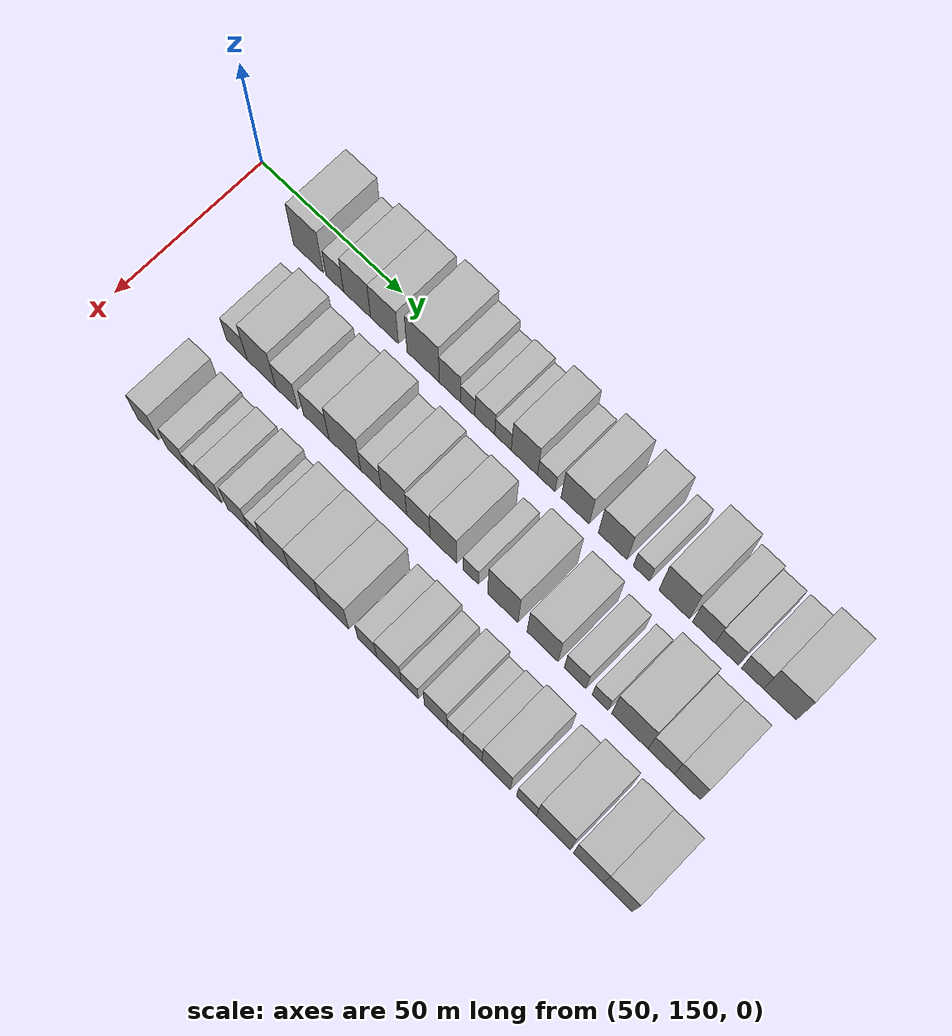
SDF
<sdf version="1.6">
 <world name="default">
  <model name="building_56">
   <static>1</static>
   <pose>50.0000 177.0735 0 0.000000 0.000000 0.000000</pose>
   <link name="link">
    <pose>0 0 12.00 0 0 0</pose>
    <collision name="collision"><geometry><box><size>20.0000 10.5805 24.0000</size></box></geometry></collision>
    <visual name="visual">
     <cast_shadows>0</cast_shadows>
     <geometry><box><size>20.0000 10.5805 24.0000</size></box></geometry>
     <material>
      <script>
       <uri>model://HANNAS_wall/materials/scripts</uri>
       <uri>model://HANNAS_wall/materials/textures</uri>
       <name>vrc/HANNAS_wall</name>
      </script>
     </material>
    </visual>
   </link>
  </model>
  <model name="building_57">
   <static>1</static>
   <pose>50.0000 186.5038 0 0.000000 0.000000 0.000000</pose>
   <link name="link">
    <pose>0 0 7.50 0 0 0</pose>
    <collision name="collision"><geometry><box><size>20.0000 6.2799 15.0000</size></box></geometry></collision>
    <visual name="visual">
     <cast_shadows>0</cast_shadows>
     <geometry><box><size>20.0000 6.2799 15.0000</size></box></geometry>
     <material>
      <script>
       <uri>model://HANNAS_wall/materials/scripts</uri>
       <uri>model://HANNAS_wall/materials/textures</uri>
       <name>vrc/HANNAS_wall</name>
      </script>
     </material>
    </visual>
   </link>
  </model>
  <model name="building_58">
   <static>1</static>
   <pose>50.0000 194.4133 0 0.000000 0.000000 0.000000</pose>
   <link name="link">
    <pose>0 0 10.50 0 0 0</pose>
    <collision name="collision"><geometry><box><size>20.0000 9.5391 21.0000</size></box></geometry></collision>
    <visual name="visual">
     <cast_shadows>0</cast_shadows>
     <geometry><box><size>20.0000 9.5391 21.0000</size></box></geometry>
     <material>
      <script>
       <uri>model://HANNAS_wall/materials/scripts</uri>
       <uri>model://HANNAS_wall/materials/textures</uri>
       <name>vrc/HANNAS_wall</name>
      </script>
     </material>
    </visual>
   </link>
  </model>
  <model name="building_59">
   <static>1</static>
   <pose>50.0000 204.0315 0 0.000000 0.000000 0.000000</pose>
   <link name="link">
    <pose>0 0 10.50 0 0 0</pose>
    <collision name="collision"><geometry><box><size>20.0000 9.6973 21.0000</size></box></geometry></collision>
    <visual name="visual">
     <cast_shadows>0</cast_shadows>
     <geometry><box><size>20.0000 9.6973 21.0000</size></box></geometry>
     <material>
      <script>
       <uri>model://HANNAS_wall/materials/scripts</uri>
       <uri>model://HANNAS_wall/materials/textures</uri>
       <name>vrc/HANNAS_wall</name>
      </script>
     </material>
    </visual>
   </link>
  </model>
  <model name="building_60">
   <static>1</static>
   <pose>50.0000 217.4549 0 0.000000 0.000000 0.000000</pose>
   <link name="link">
    <pose>0 0 12.00 0 0 0</pose>
    <collision name="collision"><geometry><box><size>20.0000 11.1494 24.0000</size></box></geometry></collision>
    <visual name="visual">
     <cast_shadows>0</cast_shadows>
     <geometry><box><size>20.0000 11.1494 24.0000</size></box></geometry>
     <material>
      <script>
       <uri>model://HANNAS_wall/materials/scripts</uri>
       <uri>model://HANNAS_wall/materials/textures</uri>
       <name>vrc/HANNAS_wall</name>
      </script>
     </material>
    </visual>
   </link>
  </model>
  <model name="building_61">
   <static>1</static>
   <pose>50.0000 226.6363 0 0.000000 0.000000 0.000000</pose>
   <link name="link">
    <pose>0 0 9.00 0 0 0</pose>
    <collision name="collision"><geometry><box><size>20.0000 7.2135 18.0000</size></box></geometry></collision>
    <visual name="visual">
     <cast_shadows>0</cast_shadows>
     <geometry><box><size>20.0000 7.2135 18.0000</size></box></geometry>
     <material>
      <script>
       <uri>model://HANNAS_wall/materials/scripts</uri>
       <uri>model://HANNAS_wall/materials/textures</uri>
       <name>vrc/HANNAS_wall</name>
      </script>
     </material>
    </visual>
   </link>
  </model>
  <model name="building_62">
   <static>1</static>
   <pose>50.0000 232.7166 0 0.000000 0.000000 0.000000</pose>
   <link name="link">
    <pose>0 0 6.00 0 0 0</pose>
    <collision name="collision"><geometry><box><size>20.0000 4.9470 12.0000</size></box></geometry></collision>
    <visual name="visual">
     <cast_shadows>0</cast_shadows>
     <geometry><box><size>20.0000 4.9470 12.0000</size></box></geometry>
     <material>
      <script>
       <uri>model://HANNAS_wall/materials/scripts</uri>
       <uri>model://HANNAS_wall/materials/textures</uri>
       <name>vrc/HANNAS_wall</name>
      </script>
     </material>
    </visual>
   </link>
  </model>
  <model name="building_63">
   <static>1</static>
   <pose>50.0000 238.5636 0 0.000000 0.000000 0.000000</pose>
   <link name="link">
    <pose>0 0 7.50 0 0 0</pose>
    <collision name="collision"><geometry><box><size>20.0000 6.7471 15.0000</size></box></geometry></collision>
    <visual name="visual">
     <cast_shadows>0</cast_shadows>
     <geometry><box><size>20.0000 6.7471 15.0000</size></box></geometry>
     <material>
      <script>
       <uri>model://HANNAS_wall/materials/scripts</uri>
       <uri>model://HANNAS_wall/materials/textures</uri>
       <name>vrc/HANNAS_wall</name>
      </script>
     </material>
    </visual>
   </link>
  </model>
  <model name="building_64">
   <static>1</static>
   <pose>50.0000 244.7161 0 0.000000 0.000000 0.000000</pose>
   <link name="link">
    <pose>0 0 6.00 0 0 0</pose>
    <collision name="collision"><geometry><box><size>20.0000 5.5579 12.0000</size></box></geometry></collision>
    <visual name="visual">
     <cast_shadows>0</cast_shadows>
     <geometry><box><size>20.0000 5.5579 12.0000</size></box></geometry>
     <material>
      <script>
       <uri>model://HANNAS_wall/materials/scripts</uri>
       <uri>model://HANNAS_wall/materials/textures</uri>
       <name>vrc/HANNAS_wall</name>
      </script>
     </material>
    </visual>
   </link>
  </model>
  <model name="building_65">
   <static>1</static>
   <pose>50.0000 251.9067 0 0.000000 0.000000 0.000000</pose>
   <link name="link">
    <pose>0 0 10.50 0 0 0</pose>
    <collision name="collision"><geometry><box><size>20.0000 8.8235 21.0000</size></box></geometry></collision>
    <visual name="visual">
     <cast_shadows>0</cast_shadows>
     <geometry><box><size>20.0000 8.8235 21.0000</size></box></geometry>
     <material>
      <script>
       <uri>model://HANNAS_wall/materials/scripts</uri>
       <uri>model://HANNAS_wall/materials/textures</uri>
       <name>vrc/HANNAS_wall</name>
      </script>
     </material>
    </visual>
   </link>
  </model>
  <model name="building_66">
   <static>1</static>
   <pose>50.0000 259.2285 0 0.000000 0.000000 0.000000</pose>
   <link name="link">
    <pose>0 0 6.00 0 0 0</pose>
    <collision name="collision"><geometry><box><size>20.0000 5.8201 12.0000</size></box></geometry></collision>
    <visual name="visual">
     <cast_shadows>0</cast_shadows>
     <geometry><box><size>20.0000 5.8201 12.0000</size></box></geometry>
     <material>
      <script>
       <uri>model://HANNAS_wall/materials/scripts</uri>
       <uri>model://HANNAS_wall/materials/textures</uri>
       <name>vrc/HANNAS_wall</name>
      </script>
     </material>
    </visual>
   </link>
  </model>
  <model name="building_67">
   <static>1</static>
   <pose>50.0000 268.7913 0 0.000000 0.000000 0.000000</pose>
   <link name="link">
    <pose>0 0 10.50 0 0 0</pose>
    <collision name="collision"><geometry><box><size>20.0000 9.3053 21.0000</size></box></geometry></collision>
    <visual name="visual">
     <cast_shadows>0</cast_shadows>
     <geometry><box><size>20.0000 9.3053 21.0000</size></box></geometry>
     <material>
      <script>
       <uri>model://HANNAS_wall/materials/scripts</uri>
       <uri>model://HANNAS_wall/materials/textures</uri>
       <name>vrc/HANNAS_wall</name>
      </script>
     </material>
    </visual>
   </link>
  </model>
  <model name="building_68">
   <static>1</static>
   <pose>50.0000 281.1431 0 0.000000 0.000000 0.000000</pose>
   <link name="link">
    <pose>0 0 10.50 0 0 0</pose>
    <collision name="collision"><geometry><box><size>20.0000 9.3983 21.0000</size></box></geometry></collision>
    <visual name="visual">
     <cast_shadows>0</cast_shadows>
     <geometry><box><size>20.0000 9.3983 21.0000</size></box></geometry>
     <material>
      <script>
       <uri>model://HANNAS_wall/materials/scripts</uri>
       <uri>model://HANNAS_wall/materials/textures</uri>
       <name>vrc/HANNAS_wall</name>
      </script>
     </material>
    </visual>
   </link>
  </model>
  <model name="building_69">
   <static>1</static>
   <pose>50.0000 290.4955 0 0.000000 0.000000 0.000000</pose>
   <link name="link">
    <pose>0 0 6.00 0 0 0</pose>
    <collision name="collision"><geometry><box><size>20.0000 5.3065 12.0000</size></box></geometry></collision>
    <visual name="visual">
     <cast_shadows>0</cast_shadows>
     <geometry><box><size>20.0000 5.3065 12.0000</size></box></geometry>
     <material>
      <script>
       <uri>model://HANNAS_wall/materials/scripts</uri>
       <uri>model://HANNAS_wall/materials/textures</uri>
       <name>vrc/HANNAS_wall</name>
      </script>
     </material>
    </visual>
   </link>
  </model>
  <model name="building_70">
   <static>1</static>
   <pose>50.0000 301.0372 0 0.000000 0.000000 0.000000</pose>
   <link name="link">
    <pose>0 0 12.00 0 0 0</pose>
    <collision name="collision"><geometry><box><size>20.0000 9.7767 24.0000</size></box></geometry></collision>
    <visual name="visual">
     <cast_shadows>0</cast_shadows>
     <geometry><box><size>20.0000 9.7767 24.0000</size></box></geometry>
     <material>
      <script>
       <uri>model://HANNAS_wall/materials/scripts</uri>
       <uri>model://HANNAS_wall/materials/textures</uri>
       <name>vrc/HANNAS_wall</name>
      </script>
     </material>
    </visual>
   </link>
  </model>
  <model name="building_71">
   <static>1</static>
   <pose>50.0000 310.5488 0 0.000000 0.000000 0.000000</pose>
   <link name="link">
    <pose>0 0 9.00 0 0 0</pose>
    <collision name="collision"><geometry><box><size>20.0000 7.2466 18.0000</size></box></geometry></collision>
    <visual name="visual">
     <cast_shadows>0</cast_shadows>
     <geometry><box><size>20.0000 7.2466 18.0000</size></box></geometry>
     <material>
      <script>
       <uri>model://HANNAS_wall/materials/scripts</uri>
       <uri>model://HANNAS_wall/materials/textures</uri>
       <name>vrc/HANNAS_wall</name>
      </script>
     </material>
    </visual>
   </link>
  </model>
  <model name="building_72">
   <static>1</static>
   <pose>50.0000 317.8101 0 0.000000 0.000000 0.000000</pose>
   <link name="link">
    <pose>0 0 7.50 0 0 0</pose>
    <collision name="collision"><geometry><box><size>20.0000 7.2759 15.0000</size></box></geometry></collision>
    <visual name="visual">
     <cast_shadows>0</cast_shadows>
     <geometry><box><size>20.0000 7.2759 15.0000</size></box></geometry>
     <material>
      <script>
       <uri>model://HANNAS_wall/materials/scripts</uri>
       <uri>model://HANNAS_wall/materials/textures</uri>
       <name>vrc/HANNAS_wall</name>
      </script>
     </material>
    </visual>
   </link>
  </model>
  <model name="building_73">
   <static>1</static>
   <pose>50.0000 325.9385 0 0.000000 0.000000 0.000000</pose>
   <link name="link">
    <pose>0 0 7.50 0 0 0</pose>
    <collision name="collision"><geometry><box><size>20.0000 6.9809 15.0000</size></box></geometry></collision>
    <visual name="visual">
     <cast_shadows>0</cast_shadows>
     <geometry><box><size>20.0000 6.9809 15.0000</size></box></geometry>
     <material>
      <script>
       <uri>model://HANNAS_wall/materials/scripts</uri>
       <uri>model://HANNAS_wall/materials/textures</uri>
       <name>vrc/HANNAS_wall</name>
      </script>
     </material>
    </visual>
   </link>
  </model>
  <model name="building_74">
   <static>1</static>
   <pose>50.0000 334.4975 0 0.000000 0.000000 0.000000</pose>
   <link name="link">
    <pose>0 0 12.00 0 0 0</pose>
    <collision name="collision"><geometry><box><size>20.0000 10.1372 24.0000</size></box></geometry></collision>
    <visual name="visual">
     <cast_shadows>0</cast_shadows>
     <geometry><box><size>20.0000 10.1372 24.0000</size></box></geometry>
     <material>
      <script>
       <uri>model://HANNAS_wall/materials/scripts</uri>
       <uri>model://HANNAS_wall/materials/textures</uri>
       <name>vrc/HANNAS_wall</name>
      </script>
     </material>
    </visual>
   </link>
  </model>
  <model name="building_131">
   <static>1</static>
   <pose>79.0000 182.2149 0 0.000000 0.000000 0.000000</pose>
   <link name="link">
    <pose>0 0 7.50 0 0 0</pose>
    <collision name="collision"><geometry><box><size>20.0000 7.2823 15.0000</size></box></geometry></collision>
    <visual name="visual">
     <cast_shadows>0</cast_shadows>
     <geometry><box><size>20.0000 7.2823 15.0000</size></box></geometry>
     <material>
      <script>
       <uri>model://HANNAS_wall/materials/scripts</uri>
       <uri>model://HANNAS_wall/materials/textures</uri>
       <name>vrc/HANNAS_wall</name>
      </script>
     </material>
    </visual>
   </link>
  </model>
  <model name="building_132">
   <static>1</static>
   <pose>79.0000 190.9403 0 0.000000 0.000000 0.000000</pose>
   <link name="link">
    <pose>0 0 12.00 0 0 0</pose>
    <collision name="collision"><geometry><box><size>20.0000 10.1685 24.0000</size></box></geometry></collision>
    <visual name="visual">
     <cast_shadows>0</cast_shadows>
     <geometry><box><size>20.0000 10.1685 24.0000</size></box></geometry>
     <material>
      <script>
       <uri>model://HANNAS_wall/materials/scripts</uri>
       <uri>model://HANNAS_wall/materials/textures</uri>
       <name>vrc/HANNAS_wall</name>
      </script>
     </material>
    </visual>
   </link>
  </model>
  <model name="building_133">
   <static>1</static>
   <pose>79.0000 199.8588 0 0.000000 0.000000 0.000000</pose>
   <link name="link">
    <pose>0 0 9.00 0 0 0</pose>
    <collision name="collision"><geometry><box><size>20.0000 7.6685 18.0000</size></box></geometry></collision>
    <visual name="visual">
     <cast_shadows>0</cast_shadows>
     <geometry><box><size>20.0000 7.6685 18.0000</size></box></geometry>
     <material>
      <script>
       <uri>model://HANNAS_wall/materials/scripts</uri>
       <uri>model://HANNAS_wall/materials/textures</uri>
       <name>vrc/HANNAS_wall</name>
      </script>
     </material>
    </visual>
   </link>
  </model>
  <model name="building_134">
   <static>1</static>
   <pose>79.0000 210.1257 0 0.000000 0.000000 0.000000</pose>
   <link name="link">
    <pose>0 0 9.00 0 0 0</pose>
    <collision name="collision"><geometry><box><size>20.0000 8.8654 18.0000</size></box></geometry></collision>
    <visual name="visual">
     <cast_shadows>0</cast_shadows>
     <geometry><box><size>20.0000 8.8654 18.0000</size></box></geometry>
     <material>
      <script>
       <uri>model://HANNAS_wall/materials/scripts</uri>
       <uri>model://HANNAS_wall/materials/textures</uri>
       <name>vrc/HANNAS_wall</name>
      </script>
     </material>
    </visual>
   </link>
  </model>
  <model name="building_135">
   <static>1</static>
   <pose>79.0000 220.0191 0 0.000000 0.000000 0.000000</pose>
   <link name="link">
    <pose>0 0 12.00 0 0 0</pose>
    <collision name="collision"><geometry><box><size>20.0000 10.9213 24.0000</size></box></geometry></collision>
    <visual name="visual">
     <cast_shadows>0</cast_shadows>
     <geometry><box><size>20.0000 10.9213 24.0000</size></box></geometry>
     <material>
      <script>
       <uri>model://HANNAS_wall/materials/scripts</uri>
       <uri>model://HANNAS_wall/materials/textures</uri>
       <name>vrc/HANNAS_wall</name>
      </script>
     </material>
    </visual>
   </link>
  </model>
  <model name="building_136">
   <static>1</static>
   <pose>79.0000 228.9990 0 0.000000 0.000000 0.000000</pose>
   <link name="link">
    <pose>0 0 7.50 0 0 0</pose>
    <collision name="collision"><geometry><box><size>20.0000 7.0386 15.0000</size></box></geometry></collision>
    <visual name="visual">
     <cast_shadows>0</cast_shadows>
     <geometry><box><size>20.0000 7.0386 15.0000</size></box></geometry>
     <material>
      <script>
       <uri>model://HANNAS_wall/materials/scripts</uri>
       <uri>model://HANNAS_wall/materials/textures</uri>
       <name>vrc/HANNAS_wall</name>
      </script>
     </material>
    </visual>
   </link>
  </model>
  <model name="building_137">
   <static>1</static>
   <pose>79.0000 236.8319 0 0.000000 0.000000 0.000000</pose>
   <link name="link">
    <pose>0 0 10.50 0 0 0</pose>
    <collision name="collision"><geometry><box><size>20.0000 8.6272 21.0000</size></box></geometry></collision>
    <visual name="visual">
     <cast_shadows>0</cast_shadows>
     <geometry><box><size>20.0000 8.6272 21.0000</size></box></geometry>
     <material>
      <script>
       <uri>model://HANNAS_wall/materials/scripts</uri>
       <uri>model://HANNAS_wall/materials/textures</uri>
       <name>vrc/HANNAS_wall</name>
      </script>
     </material>
    </visual>
   </link>
  </model>
  <model name="building_138">
   <static>1</static>
   <pose>79.0000 245.0990 0 0.000000 0.000000 0.000000</pose>
   <link name="link">
    <pose>0 0 9.00 0 0 0</pose>
    <collision name="collision"><geometry><box><size>20.0000 7.9072 18.0000</size></box></geometry></collision>
    <visual name="visual">
     <cast_shadows>0</cast_shadows>
     <geometry><box><size>20.0000 7.9072 18.0000</size></box></geometry>
     <material>
      <script>
       <uri>model://HANNAS_wall/materials/scripts</uri>
       <uri>model://HANNAS_wall/materials/textures</uri>
       <name>vrc/HANNAS_wall</name>
      </script>
     </material>
    </visual>
   </link>
  </model>
  <model name="building_139">
   <static>1</static>
   <pose>79.0000 253.5042 0 0.000000 0.000000 0.000000</pose>
   <link name="link">
    <pose>0 0 10.50 0 0 0</pose>
    <collision name="collision"><geometry><box><size>20.0000 8.9031 21.0000</size></box></geometry></collision>
    <visual name="visual">
     <cast_shadows>0</cast_shadows>
     <geometry><box><size>20.0000 8.9031 21.0000</size></box></geometry>
     <material>
      <script>
       <uri>model://HANNAS_wall/materials/scripts</uri>
       <uri>model://HANNAS_wall/materials/textures</uri>
       <name>vrc/HANNAS_wall</name>
      </script>
     </material>
    </visual>
   </link>
  </model>
  <model name="building_140">
   <static>1</static>
   <pose>79.0000 262.5536 0 0.000000 0.000000 0.000000</pose>
   <link name="link">
    <pose>0 0 6.00 0 0 0</pose>
    <collision name="collision"><geometry><box><size>20.0000 5.1957 12.0000</size></box></geometry></collision>
    <visual name="visual">
     <cast_shadows>0</cast_shadows>
     <geometry><box><size>20.0000 5.1957 12.0000</size></box></geometry>
     <material>
      <script>
       <uri>model://HANNAS_wall/materials/scripts</uri>
       <uri>model://HANNAS_wall/materials/textures</uri>
       <name>vrc/HANNAS_wall</name>
      </script>
     </material>
    </visual>
   </link>
  </model>
  <model name="building_141">
   <static>1</static>
   <pose>79.0000 273.1495 0 0.000000 0.000000 0.000000</pose>
   <link name="link">
    <pose>0 0 12.00 0 0 0</pose>
    <collision name="collision"><geometry><box><size>20.0000 9.9961 24.0000</size></box></geometry></collision>
    <visual name="visual">
     <cast_shadows>0</cast_shadows>
     <geometry><box><size>20.0000 9.9961 24.0000</size></box></geometry>
     <material>
      <script>
       <uri>model://HANNAS_wall/materials/scripts</uri>
       <uri>model://HANNAS_wall/materials/textures</uri>
       <name>vrc/HANNAS_wall</name>
      </script>
     </material>
    </visual>
   </link>
  </model>
  <model name="building_142">
   <static>1</static>
   <pose>79.0000 286.1738 0 0.000000 0.000000 0.000000</pose>
   <link name="link">
    <pose>0 0 10.50 0 0 0</pose>
    <collision name="collision"><geometry><box><size>20.0000 10.0525 21.0000</size></box></geometry></collision>
    <visual name="visual">
     <cast_shadows>0</cast_shadows>
     <geometry><box><size>20.0000 10.0525 21.0000</size></box></geometry>
     <material>
      <script>
       <uri>model://HANNAS_wall/materials/scripts</uri>
       <uri>model://HANNAS_wall/materials/textures</uri>
       <name>vrc/HANNAS_wall</name>
      </script>
     </material>
    </visual>
   </link>
  </model>
  <model name="building_143">
   <static>1</static>
   <pose>79.0000 296.6907 0 0.000000 0.000000 0.000000</pose>
   <link name="link">
    <pose>0 0 7.50 0 0 0</pose>
    <collision name="collision"><geometry><box><size>20.0000 6.9813 15.0000</size></box></geometry></collision>
    <visual name="visual">
     <cast_shadows>0</cast_shadows>
     <geometry><box><size>20.0000 6.9813 15.0000</size></box></geometry>
     <material>
      <script>
       <uri>model://HANNAS_wall/materials/scripts</uri>
       <uri>model://HANNAS_wall/materials/textures</uri>
       <name>vrc/HANNAS_wall</name>
      </script>
     </material>
    </visual>
   </link>
  </model>
  <model name="building_144">
   <static>1</static>
   <pose>79.0000 304.7672 0 0.000000 0.000000 0.000000</pose>
   <link name="link">
    <pose>0 0 6.00 0 0 0</pose>
    <collision name="collision"><geometry><box><size>20.0000 5.1717 12.0000</size></box></geometry></collision>
    <visual name="visual">
     <cast_shadows>0</cast_shadows>
     <geometry><box><size>20.0000 5.1717 12.0000</size></box></geometry>
     <material>
      <script>
       <uri>model://HANNAS_wall/materials/scripts</uri>
       <uri>model://HANNAS_wall/materials/textures</uri>
       <name>vrc/HANNAS_wall</name>
      </script>
     </material>
    </visual>
   </link>
  </model>
  <model name="building_145">
   <static>1</static>
   <pose>79.0000 314.1373 0 0.000000 0.000000 0.000000</pose>
   <link name="link">
    <pose>0 0 12.00 0 0 0</pose>
    <collision name="collision"><geometry><box><size>20.0000 11.5684 24.0000</size></box></geometry></collision>
    <visual name="visual">
     <cast_shadows>0</cast_shadows>
     <geometry><box><size>20.0000 11.5684 24.0000</size></box></geometry>
     <material>
      <script>
       <uri>model://HANNAS_wall/materials/scripts</uri>
       <uri>model://HANNAS_wall/materials/textures</uri>
       <name>vrc/HANNAS_wall</name>
      </script>
     </material>
    </visual>
   </link>
  </model>
  <model name="building_146">
   <static>1</static>
   <pose>79.0000 324.0451 0 0.000000 0.000000 0.000000</pose>
   <link name="link">
    <pose>0 0 9.00 0 0 0</pose>
    <collision name="collision"><geometry><box><size>20.0000 8.2473 18.0000</size></box></geometry></collision>
    <visual name="visual">
     <cast_shadows>0</cast_shadows>
     <geometry><box><size>20.0000 8.2473 18.0000</size></box></geometry>
     <material>
      <script>
       <uri>model://HANNAS_wall/materials/scripts</uri>
       <uri>model://HANNAS_wall/materials/textures</uri>
       <name>vrc/HANNAS_wall</name>
      </script>
     </material>
    </visual>
   </link>
  </model>
  <model name="building_147">
   <static>1</static>
   <pose>79.0000 332.2258 0 0.000000 0.000000 0.000000</pose>
   <link name="link">
    <pose>0 0 9.00 0 0 0</pose>
    <collision name="collision"><geometry><box><size>20.0000 8.1141 18.0000</size></box></geometry></collision>
    <visual name="visual">
     <cast_shadows>0</cast_shadows>
     <geometry><box><size>20.0000 8.1141 18.0000</size></box></geometry>
     <material>
      <script>
       <uri>model://HANNAS_wall/materials/scripts</uri>
       <uri>model://HANNAS_wall/materials/textures</uri>
       <name>vrc/HANNAS_wall</name>
      </script>
     </material>
    </visual>
   </link>
  </model>
  <model name="building_205">
   <static>1</static>
   <pose>108.0000 181.9258 0 0.000000 0.000000 0.000000</pose>
   <link name="link">
    <pose>0 0 9.00 0 0 0</pose>
    <collision name="collision"><geometry><box><size>20.0000 7.3771 18.0000</size></box></geometry></collision>
    <visual name="visual">
     <cast_shadows>0</cast_shadows>
     <geometry><box><size>20.0000 7.3771 18.0000</size></box></geometry>
     <material>
      <script>
       <uri>model://HANNAS_wall/materials/scripts</uri>
       <uri>model://HANNAS_wall/materials/textures</uri>
       <name>vrc/HANNAS_wall</name>
      </script>
     </material>
    </visual>
   </link>
  </model>
  <model name="building_206">
   <static>1</static>
   <pose>108.0000 192.1619 0 0.000000 0.000000 0.000000</pose>
   <link name="link">
    <pose>0 0 7.50 0 0 0</pose>
    <collision name="collision"><geometry><box><size>20.0000 7.0951 15.0000</size></box></geometry></collision>
    <visual name="visual">
     <cast_shadows>0</cast_shadows>
     <geometry><box><size>20.0000 7.0951 15.0000</size></box></geometry>
     <material>
      <script>
       <uri>model://HANNAS_wall/materials/scripts</uri>
       <uri>model://HANNAS_wall/materials/textures</uri>
       <name>vrc/HANNAS_wall</name>
      </script>
     </material>
    </visual>
   </link>
  </model>
  <model name="building_207">
   <static>1</static>
   <pose>108.0000 198.2757 0 0.000000 0.000000 0.000000</pose>
   <link name="link">
    <pose>0 0 6.00 0 0 0</pose>
    <collision name="collision"><geometry><box><size>20.0000 5.1326 12.0000</size></box></geometry></collision>
    <visual name="visual">
     <cast_shadows>0</cast_shadows>
     <geometry><box><size>20.0000 5.1326 12.0000</size></box></geometry>
     <material>
      <script>
       <uri>model://HANNAS_wall/materials/scripts</uri>
       <uri>model://HANNAS_wall/materials/textures</uri>
       <name>vrc/HANNAS_wall</name>
      </script>
     </material>
    </visual>
   </link>
  </model>
  <model name="building_208">
   <static>1</static>
   <pose>108.0000 204.3008 0 0.000000 0.000000 0.000000</pose>
   <link name="link">
    <pose>0 0 7.50 0 0 0</pose>
    <collision name="collision"><geometry><box><size>20.0000 6.9176 15.0000</size></box></geometry></collision>
    <visual name="visual">
     <cast_shadows>0</cast_shadows>
     <geometry><box><size>20.0000 6.9176 15.0000</size></box></geometry>
     <material>
      <script>
       <uri>model://HANNAS_wall/materials/scripts</uri>
       <uri>model://HANNAS_wall/materials/textures</uri>
       <name>vrc/HANNAS_wall</name>
      </script>
     </material>
    </visual>
   </link>
  </model>
  <model name="building_209">
   <static>1</static>
   <pose>108.0000 213.4534 0 0.000000 0.000000 0.000000</pose>
   <link name="link">
    <pose>0 0 9.00 0 0 0</pose>
    <collision name="collision"><geometry><box><size>20.0000 7.3876 18.0000</size></box></geometry></collision>
    <visual name="visual">
     <cast_shadows>0</cast_shadows>
     <geometry><box><size>20.0000 7.3876 18.0000</size></box></geometry>
     <material>
      <script>
       <uri>model://HANNAS_wall/materials/scripts</uri>
       <uri>model://HANNAS_wall/materials/textures</uri>
       <name>vrc/HANNAS_wall</name>
      </script>
     </material>
    </visual>
   </link>
  </model>
  <model name="building_210">
   <static>1</static>
   <pose>108.0000 219.7365 0 0.000000 0.000000 0.000000</pose>
   <link name="link">
    <pose>0 0 6.00 0 0 0</pose>
    <collision name="collision"><geometry><box><size>20.0000 5.1786 12.0000</size></box></geometry></collision>
    <visual name="visual">
     <cast_shadows>0</cast_shadows>
     <geometry><box><size>20.0000 5.1786 12.0000</size></box></geometry>
     <material>
      <script>
       <uri>model://HANNAS_wall/materials/scripts</uri>
       <uri>model://HANNAS_wall/materials/textures</uri>
       <name>vrc/HANNAS_wall</name>
      </script>
     </material>
    </visual>
   </link>
  </model>
  <model name="building_211">
   <static>1</static>
   <pose>108.0000 226.8703 0 0.000000 0.000000 0.000000</pose>
   <link name="link">
    <pose>0 0 10.50 0 0 0</pose>
    <collision name="collision"><geometry><box><size>20.0000 9.0889 21.0000</size></box></geometry></collision>
    <visual name="visual">
     <cast_shadows>0</cast_shadows>
     <geometry><box><size>20.0000 9.0889 21.0000</size></box></geometry>
     <material>
      <script>
       <uri>model://HANNAS_wall/materials/scripts</uri>
       <uri>model://HANNAS_wall/materials/textures</uri>
       <name>vrc/HANNAS_wall</name>
      </script>
     </material>
    </visual>
   </link>
  </model>
  <model name="building_212">
   <static>1</static>
   <pose>108.0000 236.5412 0 0.000000 0.000000 0.000000</pose>
   <link name="link">
    <pose>0 0 10.50 0 0 0</pose>
    <collision name="collision"><geometry><box><size>20.0000 10.2530 21.0000</size></box></geometry></collision>
    <visual name="visual">
     <cast_shadows>0</cast_shadows>
     <geometry><box><size>20.0000 10.2530 21.0000</size></box></geometry>
     <material>
      <script>
       <uri>model://HANNAS_wall/materials/scripts</uri>
       <uri>model://HANNAS_wall/materials/textures</uri>
       <name>vrc/HANNAS_wall</name>
      </script>
     </material>
    </visual>
   </link>
  </model>
  <model name="building_213">
   <static>1</static>
   <pose>108.0000 246.4731 0 0.000000 0.000000 0.000000</pose>
   <link name="link">
    <pose>0 0 10.50 0 0 0</pose>
    <collision name="collision"><geometry><box><size>20.0000 9.6108 21.0000</size></box></geometry></collision>
    <visual name="visual">
     <cast_shadows>0</cast_shadows>
     <geometry><box><size>20.0000 9.6108 21.0000</size></box></geometry>
     <material>
      <script>
       <uri>model://HANNAS_wall/materials/scripts</uri>
       <uri>model://HANNAS_wall/materials/textures</uri>
       <name>vrc/HANNAS_wall</name>
      </script>
     </material>
    </visual>
   </link>
  </model>
  <model name="building_214">
   <static>1</static>
   <pose>108.0000 257.4390 0 0.000000 0.000000 0.000000</pose>
   <link name="link">
    <pose>0 0 7.50 0 0 0</pose>
    <collision name="collision"><geometry><box><size>20.0000 6.3210 15.0000</size></box></geometry></collision>
    <visual name="visual">
     <cast_shadows>0</cast_shadows>
     <geometry><box><size>20.0000 6.3210 15.0000</size></box></geometry>
     <material>
      <script>
       <uri>model://HANNAS_wall/materials/scripts</uri>
       <uri>model://HANNAS_wall/materials/textures</uri>
       <name>vrc/HANNAS_wall</name>
      </script>
     </material>
    </visual>
   </link>
  </model>
  <model name="building_215">
   <static>1</static>
   <pose>108.0000 264.6384 0 0.000000 0.000000 0.000000</pose>
   <link name="link">
    <pose>0 0 9.00 0 0 0</pose>
    <collision name="collision"><geometry><box><size>20.0000 8.0778 18.0000</size></box></geometry></collision>
    <visual name="visual">
     <cast_shadows>0</cast_shadows>
     <geometry><box><size>20.0000 8.0778 18.0000</size></box></geometry>
     <material>
      <script>
       <uri>model://HANNAS_wall/materials/scripts</uri>
       <uri>model://HANNAS_wall/materials/textures</uri>
       <name>vrc/HANNAS_wall</name>
      </script>
     </material>
    </visual>
   </link>
  </model>
  <model name="building_216">
   <static>1</static>
   <pose>108.0000 271.5065 0 0.000000 0.000000 0.000000</pose>
   <link name="link">
    <pose>0 0 6.00 0 0 0</pose>
    <collision name="collision"><geometry><box><size>20.0000 5.6583 12.0000</size></box></geometry></collision>
    <visual name="visual">
     <cast_shadows>0</cast_shadows>
     <geometry><box><size>20.0000 5.6583 12.0000</size></box></geometry>
     <material>
      <script>
       <uri>model://HANNAS_wall/materials/scripts</uri>
       <uri>model://HANNAS_wall/materials/textures</uri>
       <name>vrc/HANNAS_wall</name>
      </script>
     </material>
    </visual>
   </link>
  </model>
  <model name="building_217">
   <static>1</static>
   <pose>108.0000 280.0569 0 0.000000 0.000000 0.000000</pose>
   <link name="link">
    <pose>0 0 9.00 0 0 0</pose>
    <collision name="collision"><geometry><box><size>20.0000 7.4426 18.0000</size></box></geometry></collision>
    <visual name="visual">
     <cast_shadows>0</cast_shadows>
     <geometry><box><size>20.0000 7.4426 18.0000</size></box></geometry>
     <material>
      <script>
       <uri>model://HANNAS_wall/materials/scripts</uri>
       <uri>model://HANNAS_wall/materials/textures</uri>
       <name>vrc/HANNAS_wall</name>
      </script>
     </material>
    </visual>
   </link>
  </model>
  <model name="building_218">
   <static>1</static>
   <pose>108.0000 286.2996 0 0.000000 0.000000 0.000000</pose>
   <link name="link">
    <pose>0 0 6.00 0 0 0</pose>
    <collision name="collision"><geometry><box><size>20.0000 5.0428 12.0000</size></box></geometry></collision>
    <visual name="visual">
     <cast_shadows>0</cast_shadows>
     <geometry><box><size>20.0000 5.0428 12.0000</size></box></geometry>
     <material>
      <script>
       <uri>model://HANNAS_wall/materials/scripts</uri>
       <uri>model://HANNAS_wall/materials/textures</uri>
       <name>vrc/HANNAS_wall</name>
      </script>
     </material>
    </visual>
   </link>
  </model>
  <model name="building_219">
   <static>1</static>
   <pose>108.0000 291.9312 0 0.000000 0.000000 0.000000</pose>
   <link name="link">
    <pose>0 0 7.50 0 0 0</pose>
    <collision name="collision"><geometry><box><size>20.0000 6.2203 15.0000</size></box></geometry></collision>
    <visual name="visual">
     <cast_shadows>0</cast_shadows>
     <geometry><box><size>20.0000 6.2203 15.0000</size></box></geometry>
     <material>
      <script>
       <uri>model://HANNAS_wall/materials/scripts</uri>
       <uri>model://HANNAS_wall/materials/textures</uri>
       <name>vrc/HANNAS_wall</name>
      </script>
     </material>
    </visual>
   </link>
  </model>
  <model name="building_220">
   <static>1</static>
   <pose>108.0000 299.5725 0 0.000000 0.000000 0.000000</pose>
   <link name="link">
    <pose>0 0 10.50 0 0 0</pose>
    <collision name="collision"><geometry><box><size>20.0000 9.0623 21.0000</size></box></geometry></collision>
    <visual name="visual">
     <cast_shadows>0</cast_shadows>
     <geometry><box><size>20.0000 9.0623 21.0000</size></box></geometry>
     <material>
      <script>
       <uri>model://HANNAS_wall/materials/scripts</uri>
       <uri>model://HANNAS_wall/materials/textures</uri>
       <name>vrc/HANNAS_wall</name>
      </script>
     </material>
    </visual>
   </link>
  </model>
  <model name="building_221">
   <static>1</static>
   <pose>108.0000 309.2849 0 0.000000 0.000000 0.000000</pose>
   <link name="link">
    <pose>0 0 7.50 0 0 0</pose>
    <collision name="collision"><geometry><box><size>20.0000 6.3624 15.0000</size></box></geometry></collision>
    <visual name="visual">
     <cast_shadows>0</cast_shadows>
     <geometry><box><size>20.0000 6.3624 15.0000</size></box></geometry>
     <material>
      <script>
       <uri>model://HANNAS_wall/materials/scripts</uri>
       <uri>model://HANNAS_wall/materials/textures</uri>
       <name>vrc/HANNAS_wall</name>
      </script>
     </material>
    </visual>
   </link>
  </model>
  <model name="building_222">
   <static>1</static>
   <pose>108.0000 317.7746 0 0.000000 0.000000 0.000000</pose>
   <link name="link">
    <pose>0 0 12.00 0 0 0</pose>
    <collision name="collision"><geometry><box><size>20.0000 10.6170 24.0000</size></box></geometry></collision>
    <visual name="visual">
     <cast_shadows>0</cast_shadows>
     <geometry><box><size>20.0000 10.6170 24.0000</size></box></geometry>
     <material>
      <script>
       <uri>model://HANNAS_wall/materials/scripts</uri>
       <uri>model://HANNAS_wall/materials/textures</uri>
       <name>vrc/HANNAS_wall</name>
      </script>
     </material>
    </visual>
   </link>
  </model>
  <model name="building_223">
   <static>1</static>
   <pose>108.0000 328.8034 0 0.000000 0.000000 0.000000</pose>
   <link name="link">
    <pose>0 0 10.50 0 0 0</pose>
    <collision name="collision"><geometry><box><size>20.0000 9.4406 21.0000</size></box></geometry></collision>
    <visual name="visual">
     <cast_shadows>0</cast_shadows>
     <geometry><box><size>20.0000 9.4406 21.0000</size></box></geometry>
     <material>
      <script>
       <uri>model://HANNAS_wall/materials/scripts</uri>
       <uri>model://HANNAS_wall/materials/textures</uri>
       <name>vrc/HANNAS_wall</name>
      </script>
     </material>
    </visual>
   </link>
  </model>
  <model name="building_224">
   <static>1</static>
   <pose>108.0000 337.9482 0 0.000000 0.000000 0.000000</pose>
   <link name="link">
    <pose>0 0 10.50 0 0 0</pose>
    <collision name="collision"><geometry><box><size>20.0000 8.8490 21.0000</size></box></geometry></collision>
    <visual name="visual">
     <cast_shadows>0</cast_shadows>
     <geometry><box><size>20.0000 8.8490 21.0000</size></box></geometry>
     <material>
      <script>
       <uri>model://HANNAS_wall/materials/scripts</uri>
       <uri>model://HANNAS_wall/materials/textures</uri>
       <name>vrc/HANNAS_wall</name>
      </script>
     </material>
    </visual>
   </link>
  </model>
 </world>
</sdf>
